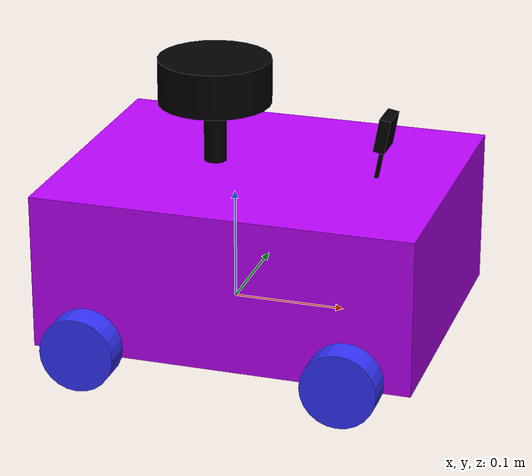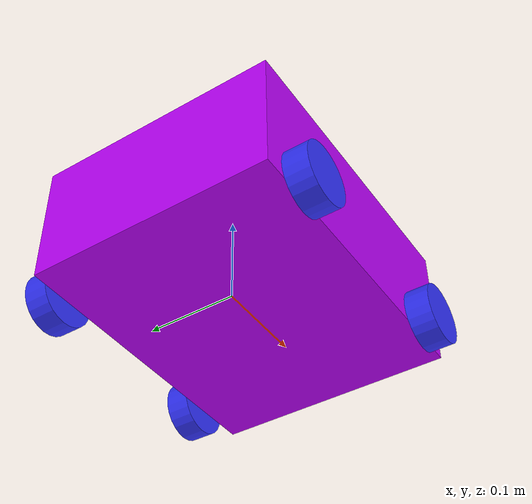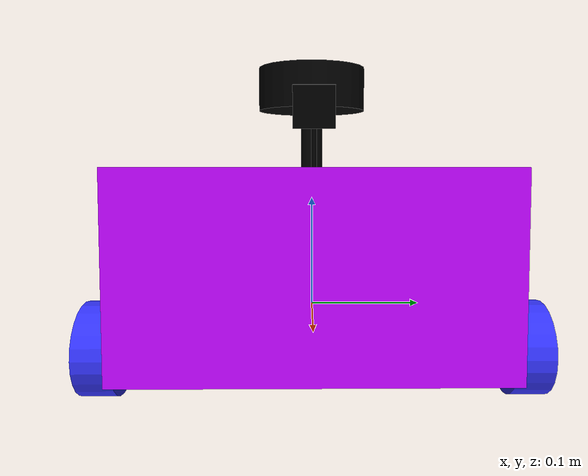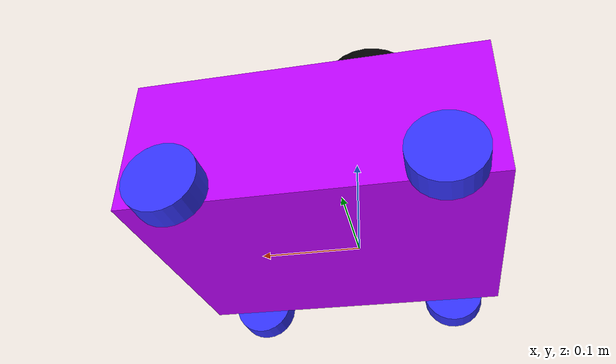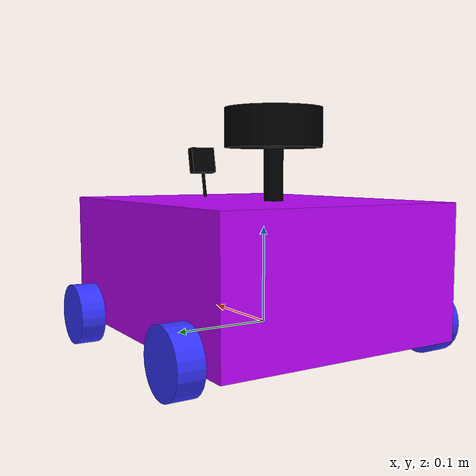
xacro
<?xml version="1.0"?>
<robot xmlns:xacro="http://www.ros.org/wiki/xacro"  name="robot">

    <xacro:arg name="use_ros2_control" default="true"/>
    <xacro:arg name="sim_mode" default="false"/>
    <xacro:arg name="robot_name" default=""/>

    <xacro:include filename="robot_core.xacro" />

    <xacro:if value="$(arg use_ros2_control)">
        <xacro:include filename="ros2_control.xacro" />
    </xacro:if>
    <xacro:unless value="$(arg use_ros2_control)">
        <xacro:include filename="gazebo_control.xacro" />
    </xacro:unless>
    <xacro:include filename="lidar.xacro" />
    <xacro:include filename="camera.xacro" />

</robot>

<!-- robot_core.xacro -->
<robot xmlns:xacro="http://www.ros.org/wiki/xacro" >

    <xacro:include filename="inertial_macros.xacro"/>

    <xacro:arg name="robot_name" default=""/>
    <xacro:property name="robot_name" value="$(arg robot_name)"/>

    <xacro:property name="chassis_length" value="0.335"/>
    <xacro:property name="chassis_width" value="0.265"/>
    <xacro:property name="chassis_height" value="0.138"/>
    <xacro:property name="chassis_mass" value="1.0"/>
    <xacro:property name="wheel_radius" value="0.033"/>
    <xacro:property name="wheel_thickness" value="0.026"/>
    <xacro:property name="wheel_mass" value="0.05"/>
    <xacro:property name="wheel_offset_x_front" value="0.14"/>
    <xacro:property name="wheel_offset_x_rear" value="-0.09"/>
    <xacro:property name="wheel_offset_y" value="0.1485"/>
    <xacro:property name="wheel_offset_z" value="0.01"/>

    <material name="white">
        <color rgba="1 1 1 1" />
    </material>

    <material name="violet">
        <color rgba="0.745 0.0117 0.9921 1"/>
    </material>

    <material name="blue">
        <color rgba="0.2 0.2 1 1"/>
    </material>

    <material name="black">
        <color rgba="0 0 0 1"/>
    </material>

    <material name="red">
        <color rgba="1 0 0 1"/>
    </material>

    <material name="green">
        <color rgba="0.18 0.8 0.25 1"/>
    </material>

    <material name="orange">
        <color rgba="1.0 0.55 0.0 1"/>
    </material>

    <!-- BASE LINK -->

    <link name="base_link"></link>

    <!-- BASE_FOOTPRINT LINK -->

    <joint name="base_footprint_joint" type="fixed">
        <parent link="base_link"/>
        <child link="base_footprint"/>
        <origin xyz="0 0 0" rpy="0 0 0"/>
    </joint>

    <link name="base_footprint"></link>

    <!-- CHASSIS LINK -->

    <joint name="chassis_joint" type="fixed">
        <parent link="base_link"/>
        <child link="chassis"/>
        <origin xyz="${-wheel_offset_x_front} 0 ${-wheel_offset_z}"/>
    </joint>

    <link name="chassis">
        <visual>
            <origin xyz="${chassis_length/2} 0 ${chassis_height/2}"/>
            <geometry>
                <box size="${chassis_length} ${chassis_width} ${chassis_height}"/>
            </geometry>
            <xacro:if value="${robot_name == 'robot2'}">
                <material name="green"/>
            </xacro:if>
            <xacro:unless value="${robot_name == 'robot2'}">
                <material name="violet"/>
            </xacro:unless>
        </visual>
        <collision>
            <origin xyz="${chassis_length/2} 0 ${chassis_height/2}"/>
            <geometry>
                <box size="${chassis_length} ${chassis_width} ${chassis_height}"/>
            </geometry>
        </collision>
        <xacro:inertial_box mass="0.5" x="${chassis_length}" y="${chassis_width}" z="${chassis_height}">
            <origin xyz="${chassis_length/2} 0 ${chassis_height/2}" rpy="0 0 0"/>
        </xacro:inertial_box>
    </link>

    <gazebo reference="chassis">
        <xacro:if value="${robot_name == 'robot2'}">
            <material>Gazebo/Green</material>
        </xacro:if>
        <xacro:unless value="${robot_name == 'robot2'}">
            <material>Gazebo/Violet</material>
        </xacro:unless>
    </gazebo>

    <!-- FRONT LEFT WHEEL LINK -->

    <joint name="left_wheel_joint" type="continuous">
        <parent link="base_link"/>
        <child link="left_wheel"/>
        <origin xyz="${wheel_offset_x_front} ${wheel_offset_y} 0" rpy="-${pi/2} 0 0" />
        <axis xyz="0 0 1"/>
    </joint>

    <link name="left_wheel">
        <visual>
            <geometry>
                <cylinder radius="${wheel_radius}" length="${wheel_thickness}"/>
            </geometry>
            <material name="blue"/>
        </visual>
        <collision>
            <geometry>
                <sphere radius="${wheel_radius}"/>
            </geometry>
        </collision>
        <xacro:inertial_cylinder mass="${wheel_mass}" length="${wheel_thickness}" radius="${wheel_radius}">
            <origin xyz="0 0 0" rpy="0 0 0"/>
        </xacro:inertial_cylinder>
    </link>

    <gazebo reference="left_wheel">
        <xacro:if value="${robot_name == 'robot2'}">
            <material>Gazebo/Orange</material>
        </xacro:if>
        <xacro:unless value="${robot_name == 'robot2'}">
            <material>Gazebo/Blue</material>
        </xacro:unless>
    </gazebo>

    <!-- FRONT RIGHT WHEEL LINK -->

    <joint name="right_wheel_joint" type="continuous">
        <parent link="base_link"/>
        <child link="right_wheel"/>
        <origin xyz="${wheel_offset_x_front} ${-wheel_offset_y} 0" rpy="${pi/2} 0 0" />
        <axis xyz="0 0 -1"/>
    </joint>

    <link name="right_wheel">
        <visual>
            <geometry>
                <cylinder radius="${wheel_radius}" length="${wheel_thickness}"/>
            </geometry>
            <material name="blue"/>
        </visual>
        <collision>
            <geometry>
                <sphere radius="${wheel_radius}"/>
            </geometry>
        </collision>
        <xacro:inertial_cylinder mass="${wheel_mass}" length="${wheel_thickness}" radius="${wheel_radius}">
            <origin xyz="0 0 0" rpy="0 0 0"/>
        </xacro:inertial_cylinder>
    </link>

    <gazebo reference="right_wheel">
        <xacro:if value="${robot_name == 'robot2'}">
            <material>Gazebo/Orange</material>
        </xacro:if>
        <xacro:unless value="${robot_name == 'robot2'}">
            <material>Gazebo/Blue</material>
        </xacro:unless>
    </gazebo>

    <!-- REAR LEFT WHEEL LINK -->

    <joint name="rear_left_wheel_joint" type="continuous">
        <parent link="base_link"/>
        <child link="rear_left_wheel"/>
        <origin xyz="${wheel_offset_x_rear} ${wheel_offset_y} 0" rpy="-${pi/2} 0 0" />
        <axis xyz="0 0 1"/>
    </joint>

    <link name="rear_left_wheel">
        <visual>
            <geometry>
                <cylinder radius="${wheel_radius}" length="${wheel_thickness}"/>
            </geometry>
            <material name="blue"/>
        </visual>
        <collision>
            <geometry>
                <sphere radius="${wheel_radius}"/>
            </geometry>
        </collision>
        <xacro:inertial_cylinder mass="${wheel_mass}" length="${wheel_thickness}" radius="${wheel_radius}">
            <origin xyz="0 0 0" rpy="0 0 0"/>
        </xacro:inertial_cylinder>
    </link>

    <gazebo reference="rear_left_wheel">
        <xacro:if value="${robot_name == 'robot2'}">
            <material>Gazebo/Orange</material>
        </xacro:if>
        <xacro:unless value="${robot_name == 'robot2'}">
            <material>Gazebo/Blue</material>
        </xacro:unless>
    </gazebo>

    <!-- REAR RIGHT WHEEL LINK -->

    <joint name="rear_right_wheel_joint" type="continuous">
        <parent link="base_link"/>
        <child link="rear_right_wheel"/>
        <origin xyz="${wheel_offset_x_rear} ${-wheel_offset_y} 0" rpy="${pi/2} 0 0" />
        <axis xyz="0 0 -1"/>
    </joint>

    <link name="rear_right_wheel">
        <visual>
            <geometry>
                <cylinder radius="${wheel_radius}" length="${wheel_thickness}"/>
            </geometry>
            <material name="blue"/>
        </visual>
        <collision>
            <geometry>
                <sphere radius="${wheel_radius}"/>
            </geometry>
        </collision>
        <xacro:inertial_cylinder mass="${wheel_mass}" length="${wheel_thickness}" radius="${wheel_radius}">
            <origin xyz="0 0 0" rpy="0 0 0"/>
        </xacro:inertial_cylinder>
    </link>

    <gazebo reference="rear_right_wheel">
        <xacro:if value="${robot_name == 'robot2'}">
            <material>Gazebo/Orange</material>
        </xacro:if>
        <xacro:unless value="${robot_name == 'robot2'}">
            <material>Gazebo/Blue</material>
        </xacro:unless>
    </gazebo>

</robot>

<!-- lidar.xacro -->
<robot xmlns:xacro="http://www.ros.org/wiki/xacro" >

    <joint name="laser_joint" type="fixed">
        <parent link="chassis"/>
        <child link="laser_frame"/>
        <origin xyz="0.122 0 0.212" rpy="0 0 0"/>
    </joint>

    <link name="laser_frame">
        <visual>
            <geometry>
                <cylinder radius="0.05" length="0.04"/>
            </geometry>
            <material name="black"/>
        </visual>
        <visual>
            <origin xyz="0 0 -0.05"/>
            <geometry>
                <cylinder radius="0.01" length="0.1"/>
            </geometry>
            <material name="black"/>
        </visual>
        <collision>
            <geometry>
                <cylinder radius="0.05" length="0.04"/>
            </geometry>
        </collision>
        <xacro:inertial_cylinder mass="0.1" length="0.04" radius="0.05">
            <origin xyz="0 0 0" rpy="0 0 0"/>
        </xacro:inertial_cylinder>
    </link>

    <xacro:property name="robot_name" value="$(arg robot_name)"/>

    <gazebo reference="laser_frame">
        <material>Gazebo/Black</material>

        <sensor name="laser" type="gpu_lidar">
            <pose> 0 0 0 0 0 0 </pose>
            <visualize>false</visualize>
            <update_rate>10</update_rate>
            <lidar>
                <scan>
                    <horizontal>
                        <samples>360</samples>
                        <min_angle>-3.14</min_angle>
                        <max_angle>3.14</max_angle>
                    </horizontal>
                </scan>
                <range>
                    <min>0.3</min>
                    <max>20</max>
                </range>
            </lidar>
            <xacro:if value="${robot_name != ''}">
                <topic>${robot_name}/scan</topic>
                <gz_frame_id>${robot_name}/laser_frame</gz_frame_id>
            </xacro:if>
            <xacro:unless value="${robot_name != ''}">
                <topic>scan</topic>
                <gz_frame_id>laser_frame</gz_frame_id>
            </xacro:unless>
        </sensor>
    </gazebo>

</robot>

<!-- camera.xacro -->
<robot xmlns:xacro="http://www.ros.org/wiki/xacro" >

    <joint name="camera_joint" type="fixed">
        <parent link="chassis"/>
        <child link="camera_link"/>
        <origin xyz="0.276 0 0.181" rpy="0 0.18 0"/>
    </joint>

    <link name="camera_link">
        <visual>
            <geometry>
                <box size="0.010 0.03 0.03"/>
            </geometry>
            <material name="black"/>
        </visual>
        <visual>
            <origin xyz="0 0 -0.05"/>
            <geometry>
                <cylinder radius="0.002" length="0.1"/>
            </geometry>
            <material name="black"/>
        </visual>
    </link>

    <joint name="camera_optical_joint" type="fixed">
        <parent link="camera_link"/>
        <child link="camera_link_optical"/>
        <origin xyz="0 0 0" rpy="${-pi/2} 0 ${-pi/2}"/>
    </joint>

    <link name="camera_link_optical"></link>

    <xacro:property name="robot_name" value="$(arg robot_name)"/>

    <gazebo reference="camera_link">
        <material>Gazebo/Black</material>

        <sensor name="camera" type="camera">
            <pose> 0 0 0 0 0 0 </pose>
            <visualize>true</visualize>
            <update_rate>10</update_rate>
            <camera>
                <xacro:if value="${robot_name != ''}">
                    <camera_info_topic>${robot_name}/camera/camera_info</camera_info_topic>
                </xacro:if>
                <xacro:unless value="${robot_name != ''}">
                    <camera_info_topic>camera/camera_info</camera_info_topic>
                </xacro:unless>
                <horizontal_fov>1.089</horizontal_fov>
                <image>
                    <format>R8G8B8</format>
                    <width>640</width>
                    <height>480</height>
                </image>
                <clip>
                    <near>0.05</near>
                    <far>8.0</far>
                </clip>
            </camera>
            <xacro:if value="${robot_name != ''}">
                <topic>${robot_name}/camera/image_raw</topic>
                <gz_frame_id>${robot_name}/camera_link_optical</gz_frame_id>
            </xacro:if>
            <xacro:unless value="${robot_name != ''}">
                <topic>camera/image_raw</topic>
                <gz_frame_id>camera_link_optical</gz_frame_id>
            </xacro:unless>
        </sensor>
    </gazebo>

</robot>
